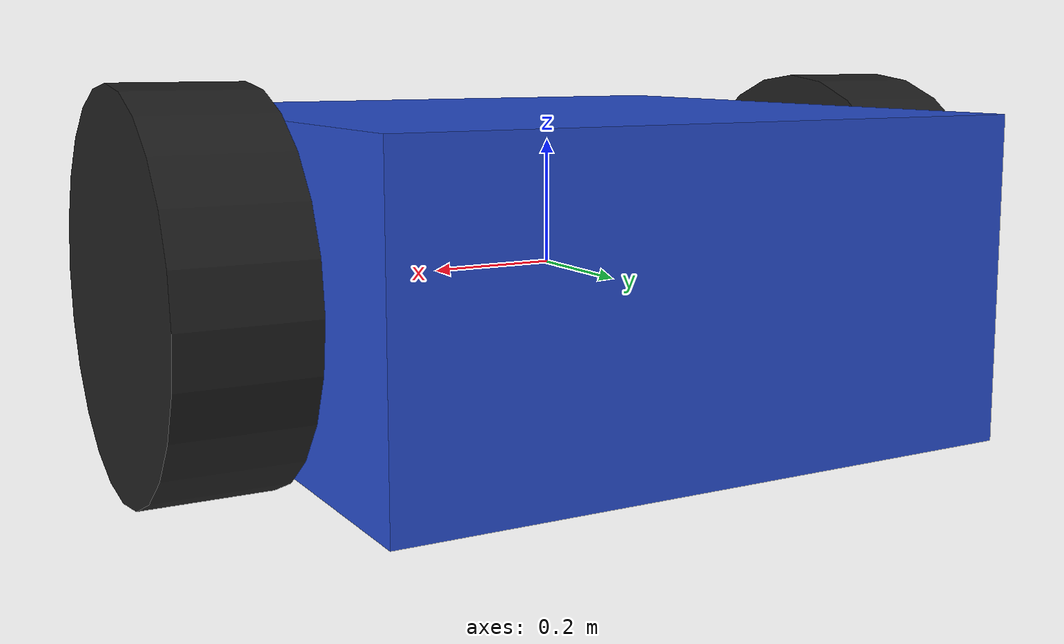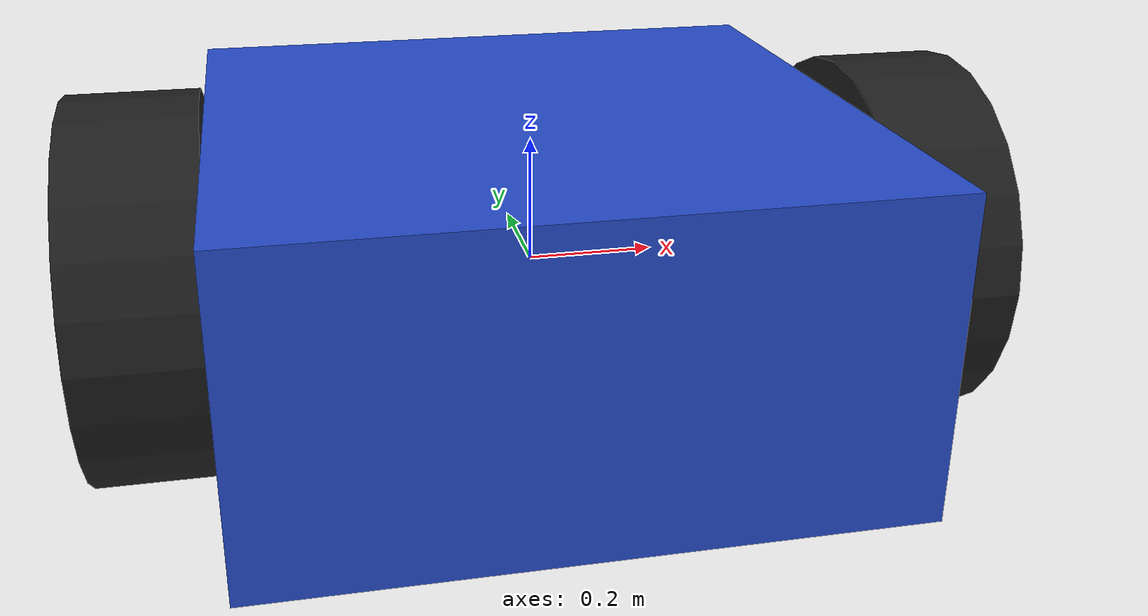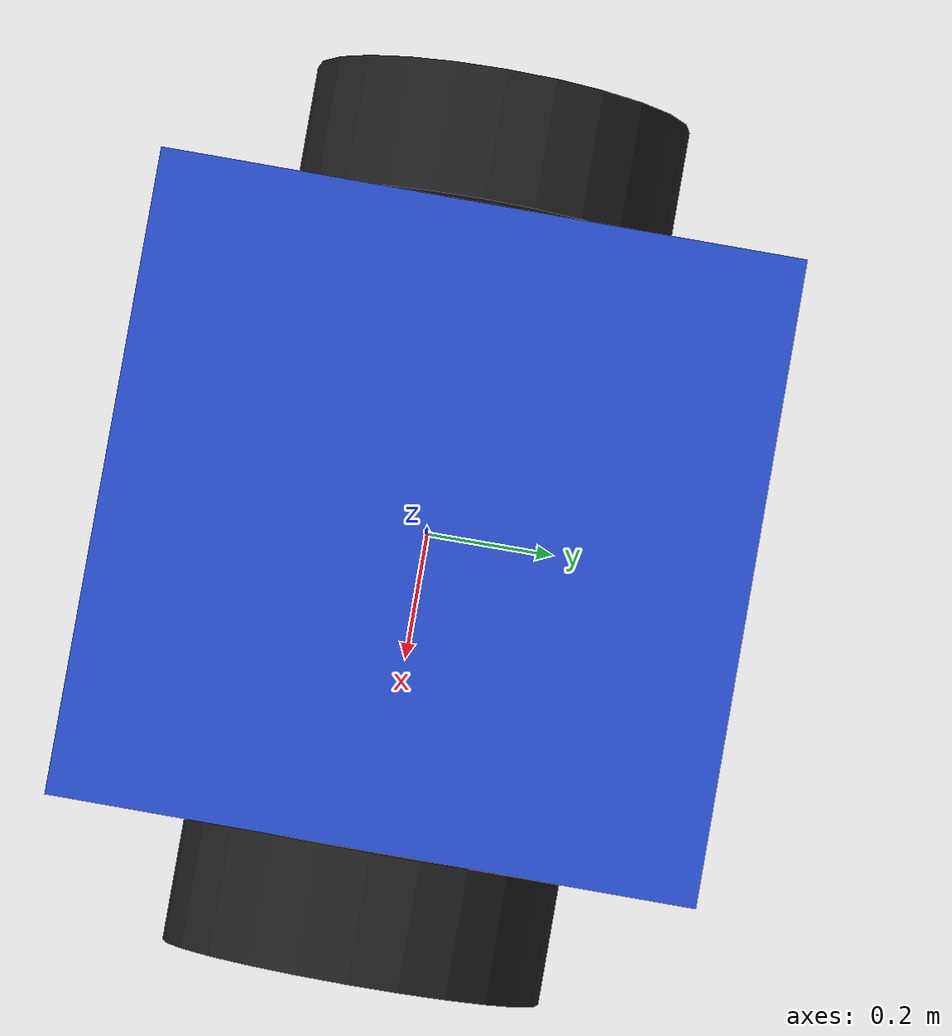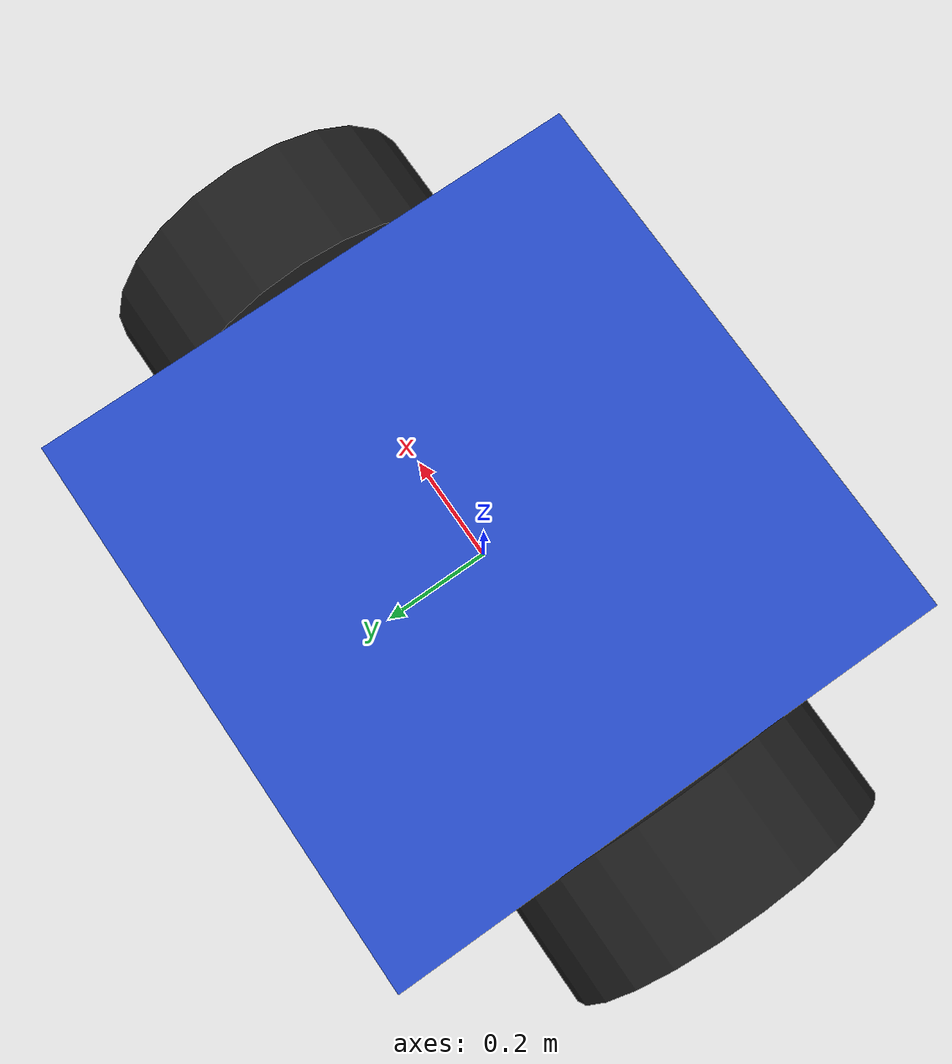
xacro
<?xml version="1.0"?>
<robot name="diff_drive_robot" xmlns:xacro="http://ros.org/wiki/xacro">

  <!-- Константы -->
  <xacro:property name="base_length" value="1"/>
  <xacro:property name="base_width" value="1"/>
  <xacro:property name="base_height" value="0.5"/>
  <xacro:property name="wheel_radius" value="0.3"/>
  <xacro:property name="wheel_length" value="0.2"/>
  <xacro:property name="wheel_mass" value="0.2"/>
  <xacro:property name="base_mass" value="1.0"/>

  <!-- Базовый корпус робота -->
  <link name="base_link">
    <visual>
      <geometry>
        <box size="${base_length} ${base_width} ${base_height}"/>
      </geometry>
      <material name="blue"/>
    </visual>
    <collision>
      <geometry>
        <box size="${base_length} ${base_width} ${base_height}"/>
      </geometry>
    </collision>
    <inertial>
      <mass value="${base_mass}"/>
      <origin rpy="0 0 0" xyz="0 0 0"/>
      <inertia ixx="0.1" ixy="0.0" ixz="0.0" iyy="0.1" iyz="0.0" izz="0.1"/>
    </inertial>
  </link>

  <!-- Левое заднее колесо -->
  <link name="left_back_wheel">
    <visual>
      <geometry>
        <cylinder length="${wheel_length}" radius="${wheel_radius}"/>
      </geometry>
      <material name="black"/>
    </visual>
    <collision>
      <geometry>
        <cylinder length="${wheel_length}" radius="${wheel_radius}"/>
      </geometry>
    </collision>
    <inertial>
      <mass value="${wheel_mass}"/>
      <origin rpy="0 0 0" xyz="0 0 0"/>
      <inertia ixx="0.01" ixy="0.0" ixz="0.0" iyy="0.01" iyz="0.0" izz="0.01"/>
    </inertial>
  </link>

  <!-- Правое заднее колесо -->
  <link name="right_back_wheel">
    <visual>
      <geometry>
        <cylinder length="${wheel_length}" radius="${wheel_radius}"/>
      </geometry>
      <material name="black"/>
    </visual>
    <collision>
      <geometry>
        <cylinder length="${wheel_length}" radius="${wheel_radius}"/>
      </geometry>
    </collision>
    <inertial>
      <mass value="${wheel_mass}"/>
      <origin rpy="0 0 0" xyz="0 0 0"/>
      <inertia ixx="0.01" ixy="0.0" ixz="0.0" iyy="0.01" iyz="0.0" izz="0.01"/>
    </inertial>
  </link>

    <!-- Левое переднее колесо -->

  <!-- Правое переднее колесо -->

  <!-- Соединения для колес -->
  <joint name="left_back_wheel_joint" type="continuous">
    <parent link="base_link"/>
    <child link="left_back_wheel"/>
    <!--origin xyz="${base_length/-2 - wheel_length/2} ${base_width/2} 0" rpy="0 ${pi/2*1} 0"/-->
    <origin xyz="${base_length/-2 - wheel_length/2} 0 0" rpy="0 ${pi/2*1} 0"/>
    <axis xyz="0 0 1"/>
  </joint>

  <joint name="right_back_wheel_joint" type="continuous">
    <parent link="base_link"/>
    <child link="right_back_wheel"/>
    <!--origin xyz="${base_length/2 + wheel_length/2} ${base_width/2} 0" rpy="0 ${pi/2*1} 0"/-->
    <origin xyz="${base_length/2 + wheel_length/2} 0 0" rpy="0 ${pi/2*1} 0"/>
    <axis xyz="0 0 1"/>
  </joint>

  <!-- Плагин для публикации состояний соединений -->
  <gazebo>
    <plugin name="gazebo_ros_joint_state_publisher" filename="libgazebo_ros_joint_state_publisher.so">
      <ros>
        <namespace>/</namespace>
      </ros>
      <joint_name>left_back_wheel_joint</joint_name>
      <joint_name>right_back_wheel_joint</joint_name>
    </plugin>
  </gazebo>

  <!-- Плагин для дифференциального привода -->
  <gazebo>
    <plugin name="gazebo_ros_diff_drive" filename="libgazebo_ros_diff_drive.so">
      <ros>
        <namespace>/</namespace>
        <remapping>cmd_vel:=/cmd_vel</remapping> <!-- Подключение к топику /cmd_vel -->
      </ros>
      <update_rate>100.0</update_rate> <!-- Частота обновления -->

      <left_joint>left_back_wheel_joint</left_joint> <!-- Левое колесо -->
      <right_joint>right_back_wheel_joint</right_joint> <!-- Правое колесо -->
      <!-- Левое колесо -->
      <!-- Правое колесо -->

      <wheel_separation>${base_width + wheel_length}</wheel_separation> <!-- Расстояние между колесами -->
      <wheel_diameter>${wheel_radius*2}</wheel_diameter> <!-- Радиус колес -->

      <odometrySource>joint_states</odometrySource> <!-- Источник одометрии -->
    </plugin>
  </gazebo>
</robot>
